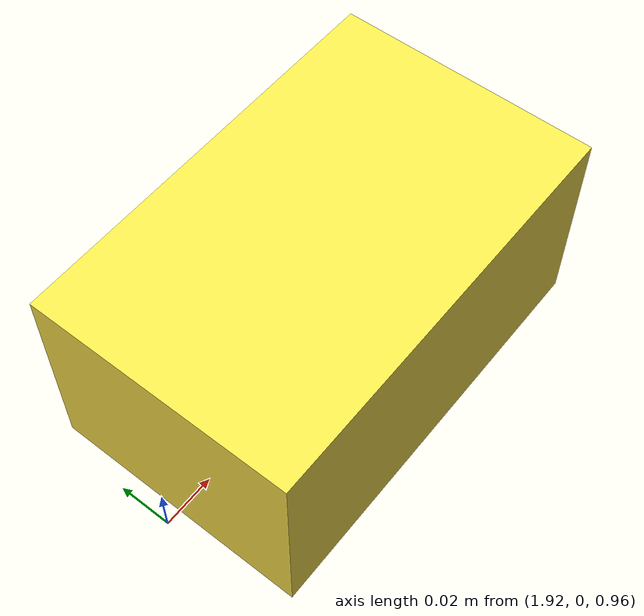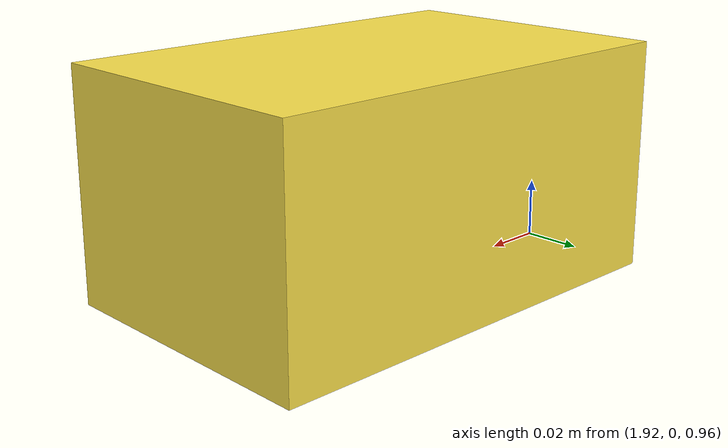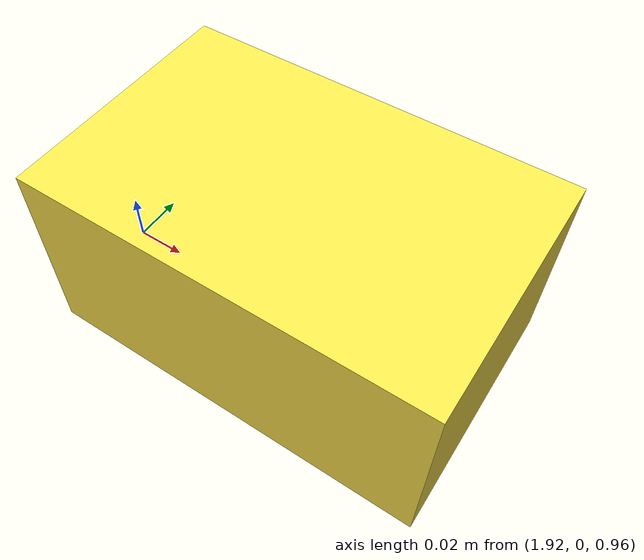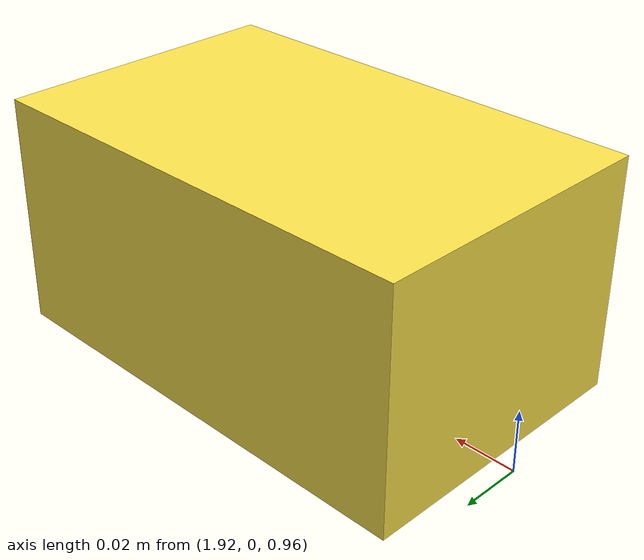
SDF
<sdf version="1.5">
  <world name="default">
    <!-- Martian Gravity-->
    <gravity>0 0 -9.81</gravity>
    <include>
      <uri>model://sun</uri>
    </include>
    <include>
      <uri>model://ground_plane</uri>
    </include>

    <include>
      <uri>model://butter</uri>
      <name>butter1</name>
      <pose>2 0 1 0 0 0</pose>
    </include>
  </world>
</sdf>

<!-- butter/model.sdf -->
<sdf version="1.6">
  <model name="butter">
    <link name="link">
      <inertial>
        <mass>0.96</mass>
        <inertia>
          <ixx>0.00017</ixx>
          <ixy>0.0</ixy>
          <ixz>0.0</ixz>
          <iyy>0.00019</iyy>
          <iyz>0.0</iyz>
          <izz>0.00016</izz>
        </inertia>
      </inertial>
      <visual name="visual">
        <geometry>
          <box>
              <size>0.15 0.095 0.075</size> <!-- dimensions in meters -->
          </box>
      </geometry>
        <material>
          <ambient>1 0.9 0.3 1</ambient> <!-- A vibrant yellow color -->
          <diffuse>1 0.9 0.3 1</diffuse>
          <specular>0.1 0.1 0.1 1</specular>
      </material>
      </visual>
      <collision name="collision">
        <geometry>
          <box>
              <size>0.15 0.095 0.075</size> <!-- dimensions in meters -->
          </box>
      </geometry>
      </collision>
    </link>
  </model>
</sdf>
